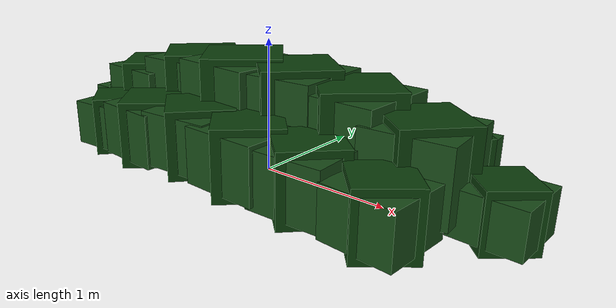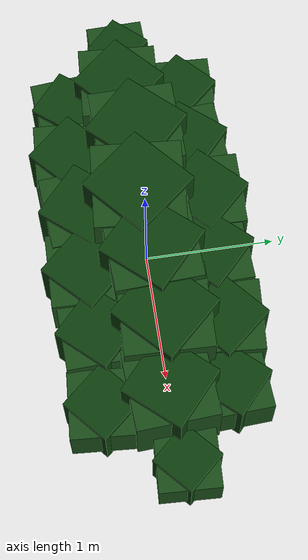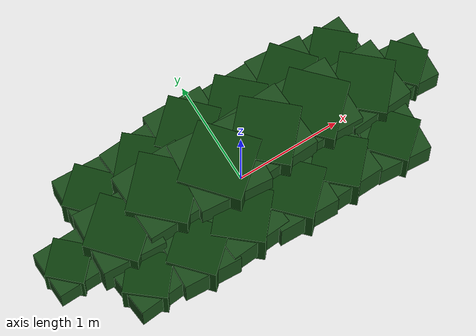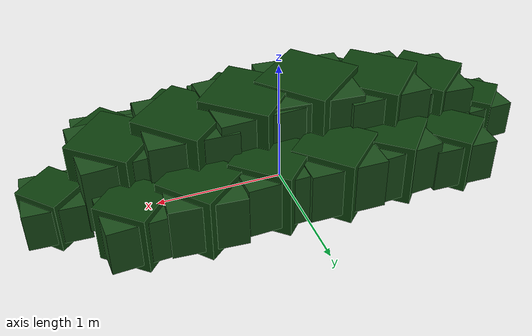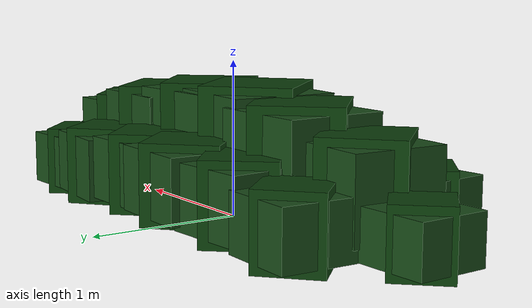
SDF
<?xml version="1.0" ?>
<sdf version="1.6">
  <model name="large_shrub">
    <static>true</static>
    <link name="link">
      <pose>0 0 0.35 0 0 0</pose>

      <visual name="b2_1"><pose>-1.22 -0.45 -0.10 0 0 0.100</pose><geometry><box><size>0.50 0.50 0.35</size></box></geometry><material><ambient>0.05 0.25 0.05 1</ambient><diffuse>0.1 0.3 0.1 1</diffuse></material><transparency>0.05</transparency></visual>
      <visual name="b2_2"><pose>-1.22 -0.45 -0.10 0 0 0.885</pose><geometry><box><size>0.40 0.40 0.45</size></box></geometry><material><ambient>0.02 0.2 0.02 1</ambient><diffuse>0.05 0.25 0.05 1</diffuse></material><transparency>0.05</transparency></visual>
      <visual name="b3_1"><pose>-0.73 -0.48 -0.05 0 0 -0.05</pose><geometry><box><size>0.55 0.55 0.40</size></box></geometry><material><ambient>0.05 0.25 0.05 1</ambient><diffuse>0.1 0.3 0.1 1</diffuse></material><transparency>0.05</transparency></visual>
      <visual name="b3_2"><pose>-0.73 -0.48 -0.05 0 0 0.735</pose><geometry><box><size>0.45 0.45 0.50</size></box></geometry><material><ambient>0.02 0.2 0.02 1</ambient><diffuse>0.05 0.25 0.05 1</diffuse></material><transparency>0.05</transparency></visual>
      <visual name="b4_1"><pose>-0.26 -0.44 -0.02 0 0 0.080</pose><geometry><box><size>0.58 0.58 0.40</size></box></geometry><material><ambient>0.05 0.25 0.05 1</ambient><diffuse>0.1 0.3 0.1 1</diffuse></material><transparency>0.05</transparency></visual>
      <visual name="b4_2"><pose>-0.26 -0.44 -0.02 0 0 0.865</pose><geometry><box><size>0.48 0.48 0.50</size></box></geometry><material><ambient>0.02 0.2 0.02 1</ambient><diffuse>0.05 0.25 0.05 1</diffuse></material><transparency>0.05</transparency></visual>
      <visual name="b5_1"><pose>0.24 -0.47 -0.03 0 0 -0.02</pose><geometry><box><size>0.58 0.58 0.40</size></box></geometry><material><ambient>0.05 0.25 0.05 1</ambient><diffuse>0.1 0.3 0.1 1</diffuse></material><transparency>0.05</transparency></visual>
      <visual name="b5_2"><pose>0.24 -0.47 -0.03 0 0 0.765</pose><geometry><box><size>0.48 0.48 0.50</size></box></geometry><material><ambient>0.02 0.2 0.02 1</ambient><diffuse>0.05 0.25 0.05 1</diffuse></material><transparency>0.05</transparency></visual>
      <visual name="b6_1"><pose>0.72 -0.45 -0.06 0 0 0.040</pose><geometry><box><size>0.55 0.55 0.40</size></box></geometry><material><ambient>0.05 0.25 0.05 1</ambient><diffuse>0.1 0.3 0.1 1</diffuse></material><transparency>0.05</transparency></visual>
      <visual name="b6_2"><pose>0.72 -0.45 -0.06 0 0 0.825</pose><geometry><box><size>0.45 0.45 0.50</size></box></geometry><material><ambient>0.02 0.2 0.02 1</ambient><diffuse>0.05 0.25 0.05 1</diffuse></material><transparency>0.05</transparency></visual>
      <visual name="b7_1"><pose>1.26 -0.49 -0.10 0 0 -0.07</pose><geometry><box><size>0.50 0.50 0.35</size></box></geometry><material><ambient>0.05 0.25 0.05 1</ambient><diffuse>0.1 0.3 0.1 1</diffuse></material><transparency>0.05</transparency></visual>
      <visual name="b7_2"><pose>1.26 -0.49 -0.10 0 0 0.715</pose><geometry><box><size>0.40 0.40 0.45</size></box></geometry><material><ambient>0.02 0.2 0.02 1</ambient><diffuse>0.05 0.25 0.05 1</diffuse></material><transparency>0.05</transparency></visual>
      <visual name="b9_1"><pose>-1.74 0.02 -0.12 0 0 0.030</pose><geometry><box><size>0.45 0.45 0.30</size></box></geometry><material><ambient>0.05 0.25 0.05 1</ambient><diffuse>0.1 0.3 0.1 1</diffuse></material><transparency>0.05</transparency></visual>
      <visual name="b9_2"><pose>-1.74 0.02 -0.12 0 0 0.815</pose><geometry><box><size>0.35 0.35 0.40</size></box></geometry><material><ambient>0.02 0.2 0.02 1</ambient><diffuse>0.05 0.25 0.05 1</diffuse></material><transparency>0.05</transparency></visual>
      <visual name="b10_1"><pose>-1.25 -0.03 0.05 0 0 -0.06</pose><geometry><box><size>0.60 0.60 0.50</size></box></geometry><material><ambient>0.05 0.25 0.05 1</ambient><diffuse>0.1 0.3 0.1 1</diffuse></material><transparency>0.05</transparency></visual>
      <visual name="b10_2"><pose>-1.25 -0.03 0.05 0 0 0.725</pose><geometry><box><size>0.50 0.50 0.60</size></box></geometry><material><ambient>0.02 0.2 0.02 1</ambient><diffuse>0.05 0.25 0.05 1</diffuse></material><transparency>0.05</transparency></visual>
      <visual name="b11_1"><pose>-0.76 0.04 0.15 0 0 0.020</pose><geometry><box><size>0.65 0.65 0.55</size></box></geometry><material><ambient>0.05 0.25 0.05 1</ambient><diffuse>0.1 0.3 0.1 1</diffuse></material><transparency>0.05</transparency></visual>
      <visual name="b11_2"><pose>-0.76 0.04 0.15 0 0 0.805</pose><geometry><box><size>0.55 0.55 0.65</size></box></geometry><material><ambient>0.02 0.2 0.02 1</ambient><diffuse>0.05 0.25 0.05 1</diffuse></material><transparency>0.05</transparency></visual>
      <visual name="b12_1"><pose>-0.23 -0.02 0.18 0 0 -0.08</pose><geometry><box><size>0.68 0.68 0.60</size></box></geometry><material><ambient>0.05 0.25 0.05 1</ambient><diffuse>0.1 0.3 0.1 1</diffuse></material><transparency>0.05</transparency></visual>
      <visual name="b12_2"><pose>-0.23 -0.02 0.18 0 0 0.705</pose><geometry><box><size>0.58 0.58 0.70</size></box></geometry><material><ambient>0.02 0.2 0.02 1</ambient><diffuse>0.05 0.25 0.05 1</diffuse></material><transparency>0.05</transparency></visual>
      <visual name="b13_1"><pose>0.25 0.01 0.16 0 0 0.050</pose><geometry><box><size>0.65 0.65 0.60</size></box></geometry><material><ambient>0.05 0.25 0.05 1</ambient><diffuse>0.1 0.3 0.1 1</diffuse></material><transparency>0.05</transparency></visual>
      <visual name="b13_2"><pose>0.25 0.01 0.16 0 0 0.835</pose><geometry><box><size>0.55 0.55 0.70</size></box></geometry><material><ambient>0.02 0.2 0.02 1</ambient><diffuse>0.05 0.25 0.05 1</diffuse></material><transparency>0.05</transparency></visual>
      <visual name="b14_1"><pose>0.74 0.03 0.12 0 0 -0.03</pose><geometry><box><size>0.65 0.65 0.55</size></box></geometry><material><ambient>0.05 0.25 0.05 1</ambient><diffuse>0.1 0.3 0.1 1</diffuse></material><transparency>0.05</transparency></visual>
      <visual name="b14_2"><pose>0.74 0.03 0.12 0 0 0.755</pose><geometry><box><size>0.55 0.55 0.65</size></box></geometry><material><ambient>0.02 0.2 0.02 1</ambient><diffuse>0.05 0.25 0.05 1</diffuse></material><transparency>0.05</transparency></visual>
      <visual name="b15_1"><pose>1.25 -0.01 0.04 0 0 0.060</pose><geometry><box><size>0.60 0.60 0.50</size></box></geometry><material><ambient>0.05 0.25 0.05 1</ambient><diffuse>0.1 0.3 0.1 1</diffuse></material><transparency>0.05</transparency></visual>
      <visual name="b15_2"><pose>1.25 -0.01 0.04 0 0 0.845</pose><geometry><box><size>0.50 0.50 0.60</size></box></geometry><material><ambient>0.02 0.2 0.02 1</ambient><diffuse>0.05 0.25 0.05 1</diffuse></material><transparency>0.05</transparency></visual>
      <visual name="b16_1"><pose>1.73 0.04 -0.14 0 0 -0.05</pose><geometry><box><size>0.45 0.45 0.30</size></box></geometry><material><ambient>0.05 0.25 0.05 1</ambient><diffuse>0.1 0.3 0.1 1</diffuse></material><transparency>0.05</transparency></visual>
      <visual name="b16_2"><pose>1.73 0.04 -0.14 0 0 0.735</pose><geometry><box><size>0.35 0.35 0.40</size></box></geometry><material><ambient>0.02 0.2 0.02 1</ambient><diffuse>0.05 0.25 0.05 1</diffuse></material><transparency>0.05</transparency></visual>
      <visual name="b18_1"><pose>-1.26 0.46 -0.10 0 0 -0.04</pose><geometry><box><size>0.50 0.50 0.35</size></box></geometry><material><ambient>0.05 0.25 0.05 1</ambient><diffuse>0.1 0.3 0.1 1</diffuse></material><transparency>0.05</transparency></visual>
      <visual name="b18_2"><pose>-1.26 0.46 -0.10 0 0 0.745</pose><geometry><box><size>0.40 0.40 0.45</size></box></geometry><material><ambient>0.02 0.2 0.02 1</ambient><diffuse>0.05 0.25 0.05 1</diffuse></material><transparency>0.05</transparency></visual>
      <visual name="b19_1"><pose>-0.74 0.43 -0.05 0 0 0.070</pose><geometry><box><size>0.55 0.55 0.40</size></box></geometry><material><ambient>0.05 0.25 0.05 1</ambient><diffuse>0.1 0.3 0.1 1</diffuse></material><transparency>0.05</transparency></visual>
      <visual name="b19_2"><pose>-0.74 0.43 -0.05 0 0 0.855</pose><geometry><box><size>0.45 0.45 0.50</size></box></geometry><material><ambient>0.02 0.2 0.02 1</ambient><diffuse>0.05 0.25 0.05 1</diffuse></material><transparency>0.05</transparency></visual>
      <visual name="b20_1"><pose>-0.25 0.48 -0.02 0 0 -0.02</pose><geometry><box><size>0.58 0.58 0.40</size></box></geometry><material><ambient>0.05 0.25 0.05 1</ambient><diffuse>0.1 0.3 0.1 1</diffuse></material><transparency>0.05</transparency></visual>
      <visual name="b20_2"><pose>-0.25 0.48 -0.02 0 0 0.765</pose><geometry><box><size>0.48 0.48 0.50</size></box></geometry><material><ambient>0.02 0.2 0.02 1</ambient><diffuse>0.05 0.25 0.05 1</diffuse></material><transparency>0.05</transparency></visual>
      <visual name="b21_1"><pose>0.22 0.44 -0.03 0 0 0.030</pose><geometry><box><size>0.58 0.58 0.40</size></box></geometry><material><ambient>0.05 0.25 0.05 1</ambient><diffuse>0.1 0.3 0.1 1</diffuse></material><transparency>0.05</transparency></visual>
      <visual name="b21_2"><pose>0.22 0.44 -0.03 0 0 0.815</pose><geometry><box><size>0.48 0.48 0.50</size></box></geometry><material><ambient>0.02 0.2 0.02 1</ambient><diffuse>0.05 0.25 0.05 1</diffuse></material><transparency>0.05</transparency></visual>
      <visual name="b22_1"><pose>0.76 0.47 -0.06 0 0 -0.08</pose><geometry><box><size>0.55 0.55 0.40</size></box></geometry><material><ambient>0.05 0.25 0.05 1</ambient><diffuse>0.1 0.3 0.1 1</diffuse></material><transparency>0.05</transparency></visual>
      <visual name="b22_2"><pose>0.76 0.47 -0.06 0 0 0.705</pose><geometry><box><size>0.45 0.45 0.50</size></box></geometry><material><ambient>0.02 0.2 0.02 1</ambient><diffuse>0.05 0.25 0.05 1</diffuse></material><transparency>0.05</transparency></visual>
      <visual name="b23_1"><pose>1.23 0.45 -0.10 0 0 0.050</pose><geometry><box><size>0.50 0.50 0.35</size></box></geometry><material><ambient>0.05 0.25 0.05 1</ambient><diffuse>0.1 0.3 0.1 1</diffuse></material><transparency>0.05</transparency></visual>
      <visual name="b23_2"><pose>1.23 0.45 -0.10 0 0 0.835</pose><geometry><box><size>0.40 0.40 0.45</size></box></geometry><material><ambient>0.02 0.2 0.02 1</ambient><diffuse>0.05 0.25 0.05 1</diffuse></material><transparency>0.05</transparency></visual>

      <collision name="collision">
        <pose>0 0 0.05 0 0 0</pose>
        <geometry>
          <box><size>3.8 1.4 0.7</size></box>
        </geometry>
      </collision>
    </link>
  </model>
</sdf>
